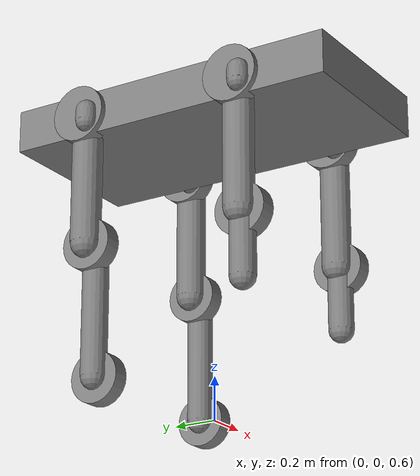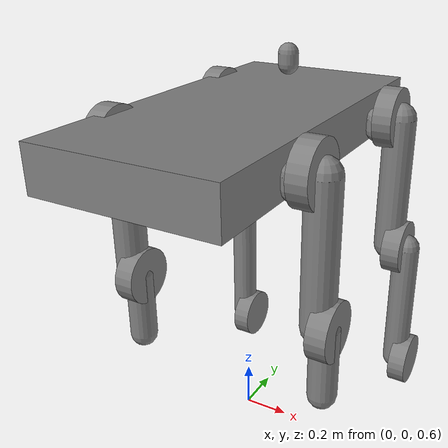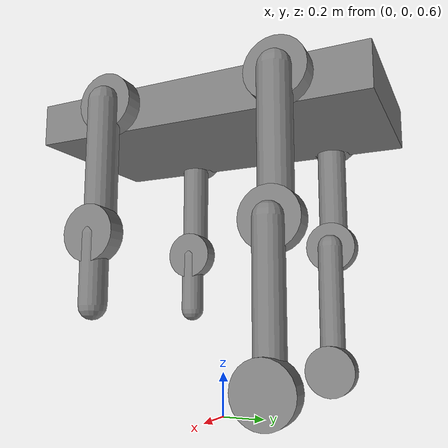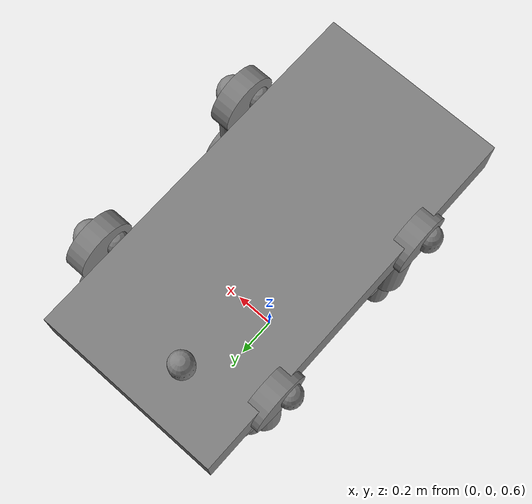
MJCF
<?xml version="1.0" encoding="utf-8"?>
<mujoco model="xmlrobot25_0_0">
	<compiler inertiafromgeom="true"/>
	<option gravity="0 0 -9.8"/>
	<size nconmax="500" njmax="1000"/>
	<custom/>
	<default/>
	<asset/>
	<worldbody>
		<body name="root" pos="0 0 2" quat="1.0 0.0 0.0 0.0">
			<geom name="geomroot" pos="-0.02 0 0.07" size="0.15 0.15 0.02" type="box" quat="1.0 0.0 0.0 0.0"/>
			<body name="body1" pos="0 0 0" quat="1.0 0.0 0.0 0.0">
				<geom name="geombody1" pos="-0.02 0 0" size="0.4 0.8 0.1" type="box" quat="1.0 0.0 0.0 0.0"/>
				<joint axis="0 0 1" damping="1.0" limited="true" name="joint_joint1" pos="0 0 0" range="-5 5" stiffness="2.0" type="hinge"/>
				<body name="hand_mount1" pos="-0.1175 0.6 0.2" quat="0.70711 0.0 0.70711 0.0">
					<geom fromto="0 0 0 0.05 0 0" name="geomhand_mount1" size="0.05" type="capsule" quat="1.0 0.0 0.0 0.0"/>
					<joint axis="1 0 0" damping="1.0" limited="true" name="joint_joint6" pos="0 0 0" range="-180 180" stiffness="2.0" type="hinge"/>
				</body>
				<body name="limbmount4" pos="0.42 -0.4 0" quat="0.70711 0.0 0.70711 0.0">
					<geom fromto="0 0 0 0.05 0 0" name="geomlimbmount4" size="0.05" type="capsule" quat="1.0 0.0 0.0 0.0"/>
					<joint axis="0 1 0" damping="1.0" limited="true" name="joint_joint5" pos="0 0 0" range="-45 45" stiffness="2.0" type="hinge"/>
					<body name="limbmount4_new_new" pos="0 0.05 0" quat="0.70711 0.0 -0.70711 0.0">
						<geom fromto="0 0 0 0.084 0 0" name="geomlimbmount4_new_new" pos="0 0 0" size="0.132" type="cylinder" euler="0 0 0"/>
						<joint axis="1 0 0" damping="1.0" limited="true" name="joint_limbmount4_new" pos="0 0 0" range="-45 45" stiffness="2.0" type="hinge"/>
						<body name="limbmount4_new_new_new_new" pos="0.084 0 0" quat="0.70711 0.0 0.70711 0.0">
							<geom fromto="0 0 0 0.6 0 0" name="geomlimbmount4_new_new_new_new" size="0.07" type="capsule" quat="1.0 0.0 0.0 0.0"/>
							<joint axis="0 1 0" damping="1.0" limited="true" name="joint_limbmount4_new_new_new" pos="0 0 0" range="-45 45" stiffness="2.0" type="hinge"/>
							<body name="limbmount4_new_new_new_new_new_new" pos="0.6 0 0" quat="0.70711 0.0 -0.70711 0.0">
								<geom fromto="0 0 0 0.084 0 0" name="geomlimbmount4_new_new_new_new_new_new" pos="0 0 0" size="0.122" type="cylinder" euler="0 0 0"/>
								<joint axis="1 0 0" damping="1.0" limited="true" name="joint_limbmount4_new_new_new_new_new" pos="0 0 0" range="-45 45" stiffness="2.0" type="hinge"/>
								<body name="limbmount4_new_new_new_new_new_new_new_new" pos="0.03 0 0" quat="0.70711 0.0 0.70711 0.0">
									<geom fromto="0 0 0 0.3 0 0" name="geomlimbmount4_new_new_new_new_new_new_new_new" size="0.06" type="capsule" quat="1.0 0.0 0.0 0.0"/>
									<joint axis="0 1 0" damping="1.0" limited="true" name="joint_limbmount4_new_new_new_new_new_new_new" pos="0 0 0" range="-45 45" stiffness="2.0" type="hinge"/>
								</body>
							</body>
						</body>
					</body>
				</body>
				<body name="limbmount3" pos="-0.45 -0.4 0" quat="0.70711 0.0 0.70711 0.0">
					<geom fromto="0 0 0 0.05 0 0" name="geomlimbmount3" size="0.05" type="capsule" quat="1.0 0.0 0.0 0.0"/>
					<joint axis="0 1 0" damping="1.0" limited="true" name="joint_joint4" pos="0 0 0" range="-45 45" stiffness="2.0" type="hinge"/>
					<body name="motor1" pos="0 0.05 0" quat="0.70711 0.0 -0.70711 0.0">
						<geom fromto="0 0 0 0.084 0 0" name="geommotor1" pos="0 0 0" size="0.132" type="cylinder" euler="0 0 0"/>
						<joint axis="1 0 0" damping="1.0" limited="true" name="joint_joint7" pos="0 0 0" range="-45 45" stiffness="2.0" type="hinge"/>
						<body name="limblink2" pos="0.084 0 0" quat="0.70711 0.0 0.70711 0.0">
							<geom fromto="0 0 0 0.6 0 0" name="geomlimblink2" size="0.07" type="capsule" quat="1.0 0.0 0.0 0.0"/>
							<joint axis="0 1 0" damping="1.0" limited="true" name="joint_joint10" pos="0 0 0" range="-45 45" stiffness="2.0" type="hinge"/>
							<body name="motor_link_end1" pos="0.6 0 0" quat="0.70711 0.0 -0.70711 0.0">
								<geom fromto="0 0 0 0.084 0 0" name="geommotor_link_end1" pos="0 0 0" size="0.122" type="cylinder" euler="0 0 0"/>
								<joint axis="1 0 0" damping="1.0" limited="true" name="joint_joint11" pos="0 0 0" range="-45 45" stiffness="2.0" type="hinge"/>
								<body name="short_limblink1" pos="0.03 0 0" quat="0.70711 0.0 0.70711 0.0">
									<geom fromto="0 0 0 0.3 0 0" name="geomshort_limblink1" size="0.06" type="capsule" quat="1.0 0.0 0.0 0.0"/>
									<joint axis="0 1 0" damping="1.0" limited="true" name="joint_joint14" pos="0 0 0" range="-45 45" stiffness="2.0" type="hinge"/>
								</body>
							</body>
						</body>
					</body>
				</body>
				<body name="limbmount2" pos="-0.45 0.4 0" quat="0.70711 0.0 0.70711 0.0">
					<geom fromto="0 0 0 0.05 0 0" name="geomlimbmount2" size="0.05" type="capsule" quat="1.0 0.0 0.0 0.0"/>
					<joint axis="0 1 0" damping="1.0" limited="true" name="joint_joint3" pos="0 0 0" range="-45 45" stiffness="2.0" type="hinge"/>
					<body name="limbmount2_new_new" pos="0 0.05 0" quat="0.70711 0.0 -0.70711 0.0">
						<geom fromto="0 0 0 0.084 0 0" name="geomlimbmount2_new_new" pos="0 0 0" size="0.132" type="cylinder" euler="0 0 0"/>
						<joint axis="1 0 0" damping="1.0" limited="true" name="joint_limbmount2_new" pos="0 0 0" range="-45 45" stiffness="2.0" type="hinge"/>
						<body name="limbmount2_new_new_new_new" pos="0.084 0 0" quat="0.70711 0.0 0.70711 0.0">
							<geom fromto="0 0 0 0.6 0 0" name="geomlimbmount2_new_new_new_new" size="0.07" type="capsule" quat="1.0 0.0 0.0 0.0"/>
							<joint axis="0 1 0" damping="1.0" limited="true" name="joint_limbmount2_new_new_new" pos="0 0 0" range="-45 45" stiffness="2.0" type="hinge"/>
							<body name="limbmount2_new_new_new_new_new_new" pos="0.6 0 0" quat="0.70711 0.0 -0.70711 0.0">
								<geom fromto="0 0 0 0.084 0 0" name="geomlimbmount2_new_new_new_new_new_new" pos="0 0 0" size="0.122" type="cylinder" euler="0 0 0"/>
								<joint axis="1 0 0" damping="1.0" limited="true" name="joint_limbmount2_new_new_new_new_new" pos="0 0 0" range="-45 45" stiffness="2.0" type="hinge"/>
								<body name="limbmount2_new_new_new_new_new_new_new_new" pos="0.084 0 0" quat="0.70711 0.0 0.70711 0.0">
									<geom fromto="0 0 0 0.6 0 0" name="geomlimbmount2_new_new_new_new_new_new_new_new" size="0.06" type="capsule" quat="1.0 0.0 0.0 0.0"/>
									<joint axis="0 1 0" damping="1.0" limited="true" name="joint_limbmount2_new_new_new_new_new_new_new" pos="0 0 0" range="-45 45" stiffness="2.0" type="hinge"/>
									<body name="limbmount2_new_new_new_new_new_new_new_new_new_new" pos="0.6 0 0" quat="0.70711 0.0 -0.70711 0.0">
										<geom fromto="0 0 0 0.08 0 0" name="geomlimbmount2_new_new_new_new_new_new_new_new_new_new" pos="0 0 0" size="0.12" type="cylinder" euler="0 0 0"/>
										<joint axis="1 0 0" damping="1.0" limited="true" name="joint_limbmount2_new_new_new_new_new_new_new_new_new" pos="0 0 0" range="-45 45" stiffness="2.0" type="hinge"/>
									</body>
								</body>
							</body>
						</body>
					</body>
				</body>
				<body name="limbmount1" pos="0.42 0.4 0" quat="0.70711 0.0 0.70711 0.0">
					<geom fromto="0 0 0 0.05 0 0" name="geomlimbmount1" size="0.05" type="capsule" quat="1.0 0.0 0.0 0.0"/>
					<joint axis="0 1 0" damping="1.0" limited="true" name="joint_joint2" pos="0 0 0" range="-45 45" stiffness="2.0" type="hinge"/>
					<body name="motor2" pos="0 0.05 0" quat="0.70711 0.0 -0.70711 0.0">
						<geom fromto="0 0 0 0.084 0 0" name="geommotor2" pos="0 0 0" size="0.132" type="cylinder" euler="0 0 0"/>
						<joint axis="1 0 0" damping="1.0" limited="true" name="joint_joint8" pos="0 0 0" range="-45 45" stiffness="2.0" type="hinge"/>
						<body name="limblink1" pos="0.084 0 0" quat="0.70711 0.0 0.70711 0.0">
							<geom fromto="0 0 0 0.6 0 0" name="geomlimblink1" size="0.07" type="capsule" quat="1.0 0.0 0.0 0.0"/>
							<joint axis="0 1 0" damping="1.0" limited="true" name="joint_joint9" pos="0 0 0" range="-45 45" stiffness="2.0" type="hinge"/>
							<body name="motor_link_end2" pos="0.6 0 0" quat="0.70711 0.0 -0.70711 0.0">
								<geom fromto="0 0 0 0.084 0 0" name="geommotor_link_end2" pos="0 0 0" size="0.122" type="cylinder" euler="0 0 0"/>
								<joint axis="1 0 0" damping="1.0" limited="true" name="joint_joint12" pos="0 0 0" range="-45 45" stiffness="2.0" type="hinge"/>
								<body name="limblink3" pos="0.084 0 0" quat="0.70711 0.0 0.70711 0.0">
									<geom fromto="0 0 0 0.6 0 0" name="geomlimblink3" size="0.06" type="capsule" quat="1.0 0.0 0.0 0.0"/>
									<joint axis="0 1 0" damping="1.0" limited="true" name="joint_joint13" pos="0 0 0" range="-45 45" stiffness="2.0" type="hinge"/>
									<body name="wheel_link_end1" pos="0.6 0 0" quat="0.70711 0.0 -0.70711 0.0">
										<geom fromto="0 0 0 0.08 0 0" name="geomwheel_link_end1" pos="0 0 0" size="0.12" type="cylinder" euler="0 0 0"/>
										<joint axis="1 0 0" damping="1.0" limited="true" name="joint_joint15" pos="0 0 0" range="-45 45" stiffness="2.0" type="hinge"/>
									</body>
								</body>
							</body>
						</body>
					</body>
				</body>
			</body>
		</body>
	</worldbody>
	<actuator>
		<motor ctrllimited="true" ctrlrange="-1 1" gear="22.5" joint="joint_joint1"/>
		<motor ctrllimited="true" ctrlrange="-1 1" gear="22.5" joint="joint_joint6"/>
		<motor ctrllimited="true" ctrlrange="-1 1" gear="22.5" joint="joint_joint5"/>
		<motor ctrllimited="true" ctrlrange="-1 1" gear="22.5" joint="joint_limbmount4_new"/>
		<motor ctrllimited="true" ctrlrange="-1 1" gear="22.5" joint="joint_limbmount4_new_new_new"/>
		<motor ctrllimited="true" ctrlrange="-1 1" gear="22.5" joint="joint_limbmount4_new_new_new_new_new"/>
		<motor ctrllimited="true" ctrlrange="-1 1" gear="22.5" joint="joint_limbmount4_new_new_new_new_new_new_new"/>
		<motor ctrllimited="true" ctrlrange="-1 1" gear="22.5" joint="joint_joint4"/>
		<motor ctrllimited="true" ctrlrange="-1 1" gear="22.5" joint="joint_joint7"/>
		<motor ctrllimited="true" ctrlrange="-1 1" gear="22.5" joint="joint_joint10"/>
		<motor ctrllimited="true" ctrlrange="-1 1" gear="22.5" joint="joint_joint11"/>
		<motor ctrllimited="true" ctrlrange="-1 1" gear="22.5" joint="joint_joint14"/>
		<motor ctrllimited="true" ctrlrange="-1 1" gear="22.5" joint="joint_joint3"/>
		<motor ctrllimited="true" ctrlrange="-1 1" gear="22.5" joint="joint_limbmount2_new"/>
		<motor ctrllimited="true" ctrlrange="-1 1" gear="22.5" joint="joint_limbmount2_new_new_new"/>
		<motor ctrllimited="true" ctrlrange="-1 1" gear="22.5" joint="joint_limbmount2_new_new_new_new_new"/>
		<motor ctrllimited="true" ctrlrange="-1 1" gear="22.5" joint="joint_limbmount2_new_new_new_new_new_new_new"/>
		<motor ctrllimited="true" ctrlrange="-1 1" gear="45" joint="joint_limbmount2_new_new_new_new_new_new_new_new_new"/>
		<motor ctrllimited="true" ctrlrange="-1 1" gear="22.5" joint="joint_joint2"/>
		<motor ctrllimited="true" ctrlrange="-1 1" gear="22.5" joint="joint_joint8"/>
		<motor ctrllimited="true" ctrlrange="-1 1" gear="22.5" joint="joint_joint9"/>
		<motor ctrllimited="true" ctrlrange="-1 1" gear="22.5" joint="joint_joint12"/>
		<motor ctrllimited="true" ctrlrange="-1 1" gear="22.5" joint="joint_joint13"/>
		<motor ctrllimited="true" ctrlrange="-1 1" gear="45" joint="joint_joint15"/>
	</actuator>
</mujoco>
